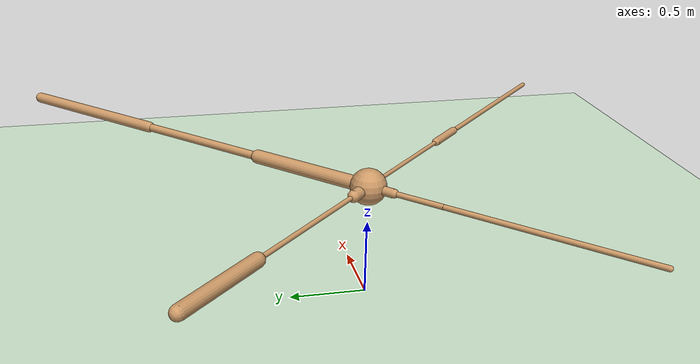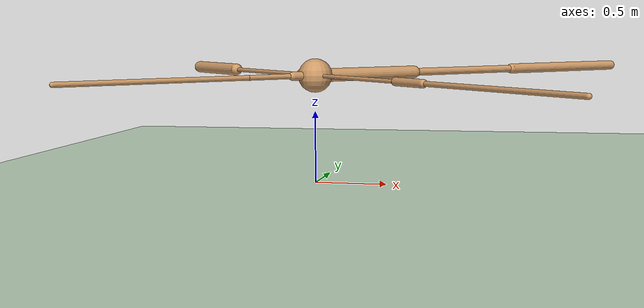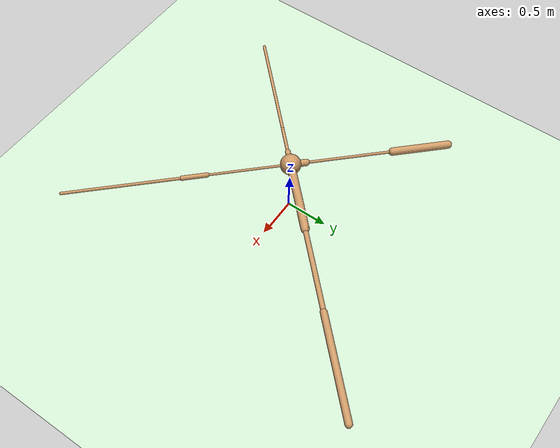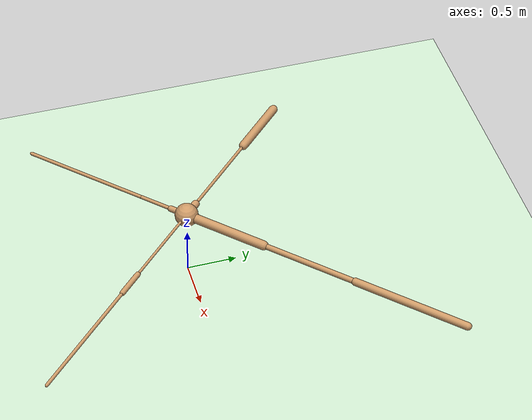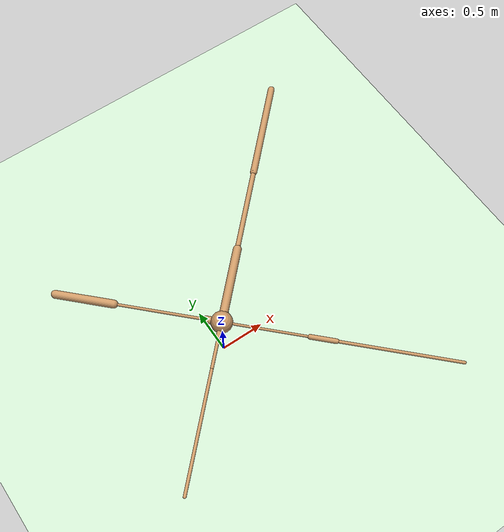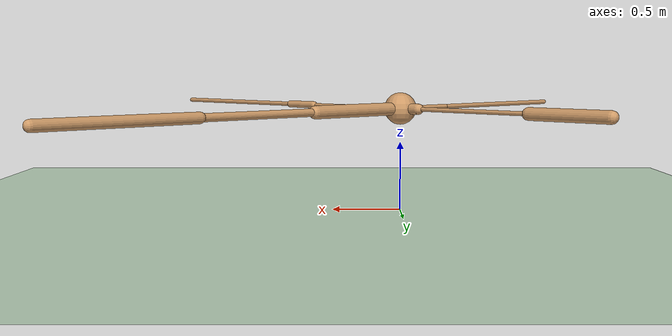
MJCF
<mujoco model="ant">
  <compiler angle="degree" coordinate="local" inertiafromgeom="true" />
  <option integrator="RK4" timestep="0.01" />
  <custom>
    <numeric data="0.0 0.0 0.55 1.0 0.0 0.0 0.0 0.0 1.0 0.0 -1.0 0.0 -1.0 0.0 1.0" name="init_qpos" />
  </custom>
  <default>
    <joint armature="1" damping="1" limited="true" />
    <geom conaffinity="0" condim="3" density="5.0" friction="1 0.5 0.5" margin="0.01" rgba="0.8 0.6 0.4 1" />
  </default>
  <asset>
    <texture builtin="gradient" height="100" rgb1="1 1 1" rgb2="0 0 0" type="skybox" width="100" />
    <texture builtin="flat" height="1278" mark="cross" markrgb="1 1 1" name="texgeom" random="0.01" rgb1="0.8 0.6 0.4" rgb2="0.8 0.6 0.4" type="cube" width="127" />
    <texture builtin="checker" height="100" name="texplane" rgb1="0 0 0" rgb2="0.8 0.8 0.8" type="2d" width="100" />
    <material name="MatPlane" reflectance="0.5" shininess="1" specular="1" texrepeat="60 60" texture="texplane" />
    <material name="geom" texture="texgeom" texuniform="true" />
  </asset>
  <worldbody>
    <light cutoff="100" diffuse="1 1 1" dir="-0 0 -1.3" directional="true" exponent="1" pos="0 0 1.3" specular=".1 .1 .1" />
    <geom conaffinity="1" condim="3" material="MatPlane" name="floor" pos="0 0 0" rgba="0.8 0.9 0.8 1" size="40 40 40" type="plane" />
    <body name="torso" pos="0 0 0.75">
      <camera name="track" mode="trackcom" pos="0 -11 5" xyaxes="1 0 0 0 0.5 1" />
      <geom name="torso_geom" pos="0 0 0" size="0.11805195361375809" type="sphere" />
      <joint armature="0" damping="0" limited="false" margin="0.01" name="root" pos="0 0 0" type="free" />
      <body name="front_left_leg" pos="0 0 0">
        <geom fromto="0 0 0 0.6112106442451477 0.6112106442451477 0" name="aux_1_geom" size="0.046493105590343475" type="capsule" />
        <body name="aux_1" pos="0.6112106442451477 0.6112106442451477 0">
          <joint axis="0 0 1" name="hip_1" pos="0.0 0.0 0.0" range="-30 30" type="hinge" />
          <geom fromto="0 0 0 0.7024168968200684 0.7024168968200684 0" name="left_leg_geom" size="0.027709098532795906" type="capsule" />
          <body name="left_leg_geom_aux" pos="0.7024168968200684 0.7024168968200684 0">
            <joint axis="-1 1 0" name="ankle_1" pos="0.0 0.0 0.0" range="30 70" type="hinge" />
            <geom fromto="0 0 0 0.829480767250061 0.829480767250061 0" name="left_ankle_geom" size="0.03835185989737511" type="capsule" />
          </body>
        </body>
      </body>
      <body name="front_right_leg" pos="0 0 0">
        <geom fromto="0 0 0 -0.12415437400341034 0.12415437400341034 0" name="aux_2_geom" size="0.03956227749586105" type="capsule" />
        <body name="aux_2" pos="-0.12415437400341034 0.12415437400341034 0">
          <joint axis="0 0 1" name="hip_2" pos="0.0 0.0 0.0" range="-30 30" type="hinge" />
          <geom fromto="0 0 0 -0.6898657083511353 0.6898657083511353 0" name="right_leg_geom" size="0.015346836298704147" type="capsule" />
          <body name="right_leg_geom_aux" pos="-0.6898657083511353 0.6898657083511353 0">
            <joint axis="1 1 0" name="ankle_2" pos="0.0 0.0 0.0" range="-70 -30" type="hinge" />
            <geom fromto="0 0 0 -0.4477040767669678 0.4477040767669678 0" name="right_ankle_geom" size="0.04492465406656265" type="capsule" />
          </body>
        </body>
      </body>
      <body name="back_leg" pos="0 0 0">
        <geom fromto="0 0 0 -0.12809360027313232 -0.12809360027313232 0" name="aux_3_geom" size="0.030046597123146057" type="capsule" />
        <body name="aux_3" pos="-0.12809360027313232 -0.12809360027313232 0">
          <joint axis="0 0 1" name="hip_3" pos="0.0 0.0 0.0" range="-30 30" type="hinge" />
          <geom fromto="0 0 0 -0.23804739117622375 -0.23804739117622375 0" name="back_leg_geom" size="0.017730142921209335" type="capsule" />
          <body name="back_leg_geom_aux" pos="-0.23804739117622375 -0.23804739117622375 0">
            <joint axis="-1 1 0" name="ankle_3" pos="0.0 0.0 0.0" range="-70 -30" type="hinge" />
            <geom fromto="0 0 0 -0.9199154376983643 -0.9199154376983643 0" name="third_ankle_geom" size="0.017175495624542236" type="capsule" />
          </body>
        </body>
      </body>
      <body name="right_back_leg" pos="0 0 0">
        <geom fromto="0 0 0 0.6546773910522461 -0.6546773910522461 0" name="aux_4_geom" size="0.013379521667957306" type="capsule" />
        <body name="aux_4" pos="0.6546773910522461 -0.6546773910522461 0">
          <joint axis="0 0 1" name="hip_4" pos="0.0 0.0 0.0" range="-30 30" type="hinge" />
          <geom fromto="0 0 0 0.19487866759300232 -0.19487866759300232 0" name="rightback_leg_geom" size="0.02698233723640442" type="capsule" />
          <body name="rightback_leg_geom_aux" pos="0.19487866759300232 -0.19487866759300232 0">
            <joint axis="1 1 0" name="ankle_4" pos="0.0 0.0 0.0" range="30 70" type="hinge" />
            <geom fromto="0 0 0 0.926479160785675 -0.926479160785675 0" name="fourth_ankle_geom" size="0.01649932563304901" type="capsule" />
          </body>
        </body>
      </body>
    </body>
  </worldbody>
  <actuator>
    <motor ctrllimited="true" ctrlrange="-1.0 1.0" joint="hip_4" gear="150" />
    <motor ctrllimited="true" ctrlrange="-1.0 1.0" joint="ankle_4" gear="150" />
    <motor ctrllimited="true" ctrlrange="-1.0 1.0" joint="hip_1" gear="150" />
    <motor ctrllimited="true" ctrlrange="-1.0 1.0" joint="ankle_1" gear="150" />
    <motor ctrllimited="true" ctrlrange="-1.0 1.0" joint="hip_2" gear="150" />
    <motor ctrllimited="true" ctrlrange="-1.0 1.0" joint="ankle_2" gear="150" />
    <motor ctrllimited="true" ctrlrange="-1.0 1.0" joint="hip_3" gear="150" />
    <motor ctrllimited="true" ctrlrange="-1.0 1.0" joint="ankle_3" gear="150" />
  </actuator>
</mujoco>
